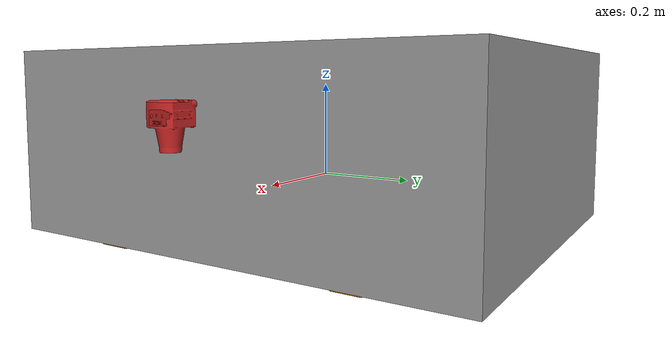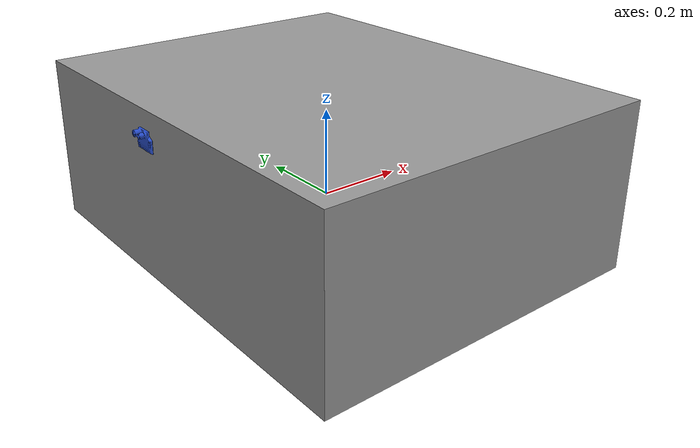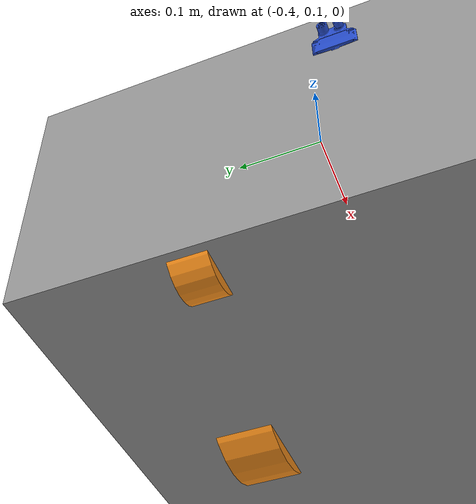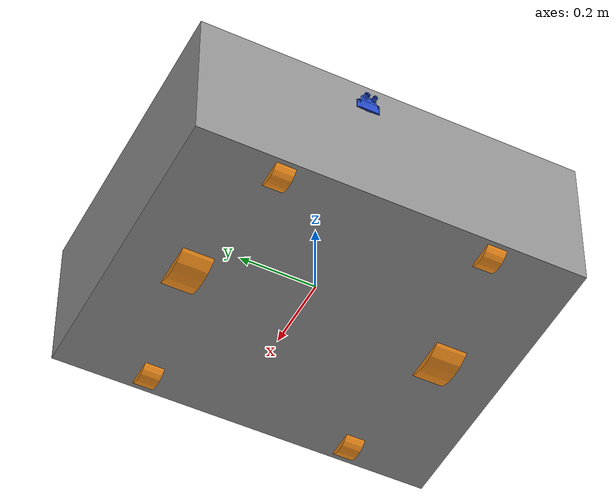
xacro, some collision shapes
<?xml version="1.0" ?>
<robot name="tway" xmlns:xacro="http://ros.org/wiki/xacro">
<!-- This included file for COLOR define-->
  <xacro:include filename="$(find tway_description)/urdf/common_properties.xacro"/>
<xacro:include filename="$(find tway_description)/urdf/tway.gazebo.xacro"/>

<!--This is for: Constant declare -->
  <xacro:property name="r200_cam_rgb_px" value="0.005"/>
  <xacro:property name="r200_cam_rgb_py" value="0.018"/>
  <xacro:property name="r200_cam_rgb_pz" value="0.013"/>
  <xacro:property name="r200_cam_depth_offset" value="0.01"/>

	<xacro:property name="length_wheel" value="0.05" />
	<xacro:property name="radius_wheel" value="0.05" />

	<xacro:arg name="carter_ori" default="-0.158" />
	<xacro:arg name="carter_radius" default="0.05" />

	<xacro:arg name="wheel_origin" default="-0.1" />

	<xacro:arg name="wheel_height" default="0" />
	<xacro:arg name="wheel_height" default="0" />

	<xacro:macro name="default_inertial" params="mass">
		<inertial>
			<mass value="${mass}" />
			<inertia ixx="1.0" ixy="0.0" ixz="0.0"
					 iyy="1.0" iyz="0.0"
					 izz="1.0" />
		</inertial>
	</xacro:macro>

<!--First, we have to Describe Tway Base (body) and its foot print -->

  <link name="base_footprint"/>
  <joint name="base_joint" type="fixed">
    <parent link="base_footprint"/>
    <child link="base_link" />
    <origin xyz="0 0 0.08" rpy="0 0 0"/>
  </joint>

  <link name="base_link">
    <visual>
      <origin xyz="-0.52 0.82 -0.40" rpy="1.57 0 0"/>      <!-- body position only -->
      <geometry>
        <mesh filename="package://tway_description/meshes/bases/tway_base.stl" scale="0.001 0.001 0.001"/>
      </geometry>
      <material name="grey"/>
    </visual>

    <collision>
      <origin xyz="0 0 0" rpy="0 0 0"/>    <!-- no effect -->
      <geometry>
        <box size="0.8 1.0 0.38"/>
      </geometry>
    </collision>

    <inertial>
      <origin xyz="0 0 0" rpy="0 0 0"/>
      <mass value="300e+00"/>
      <inertia ixx="19.61" ixy="-4.7576583e-05" ixz="1.1160499e-04"
               iyy="28.61" iyz="-3.5422299e-06"
               izz="41" />
    </inertial>
  </link>

<!-- //////////////////////Wheel part. Tway has 2 Wheels /////////////////////////-->
<!--Second, We describe Left and Right Wheel  -->

  <joint name="wheel_left_joint" type="continuous">
    <parent link="base_link"/>
    <child link="wheel_left_link"/>
    <origin xyz="0.0 0.3315 $(arg wheel_origin)" rpy="-1.57 0 0"/>
    <axis xyz="0 0 1"/>
  </joint>

  <link name="wheel_left_link">
    <visual>
      <origin xyz="0 0 0" rpy="0 0 0"/>
      <geometry>
        <cylinder length="0.08" radius="0.11"/>
      </geometry>
      <material name="orange"/>
    </visual>

    <collision>
      <origin xyz="0 0.0 0" rpy="0 0 0"/>
      <geometry>
        <cylinder length="0.08" radius="0.11"/>
      </geometry>
    </collision>

    <inertial>
      <origin xyz="0 0 0" />
      <mass value="21" />
      <inertia ixx="0.154" ixy="-4.2369783e-8" ixz="-5.9381719e-07"
               iyy="0.056" iyz="-1.4400107e-8"
               izz="0.132" />
      </inertial>
  </link>

  <joint name="wheel_right_joint" type="continuous">
    <parent link="base_link"/>
    <child link="wheel_right_link"/>
    <origin xyz="0.0 -0.3315 $(arg wheel_origin)" rpy="-1.57 0 0"/>
    <axis xyz="0 0 1"/>
  </joint>

  <link name="wheel_right_link">
    <visual>
      <origin xyz="0 0 0" rpy="0 0 0"/>
      <geometry>
        <cylinder length="0.08" radius="0.11"/>
      </geometry>
      <material name="orange"/>
    </visual>

    <collision>
      <origin xyz="0 0.0 0" rpy="0 0 0"/>
      <geometry>
        <cylinder length="0.08" radius="0.11"/>
      </geometry>
    </collision>

    <inertial>
      <origin xyz="0 0 0" />
      <mass value="21" />
      <inertia ixx="0.154" ixy="-4.2369783e-8" ixz="-5.9381719e-07"
               iyy="0.056" iyz="-1.4400107e-8"
               izz="0.132" />
      </inertial>
  </link>

<!-- //////////////////////CARTER part. Tway has 4 CARTERS /////////////////////////-->

<joint name="caster_back_right_joint" type="fixed">
    <parent link="base_link"/>
    <child link="caster_back_right_link"/>
    <origin xyz="0.35 -0.27 $(arg carter_ori)" rpy="1.57 0 0"/>
	<axis xyz="0 0 1"/>
  </joint>

  <link name="caster_back_right_link">
	 <visual>
      <origin xyz="0 0 0" rpy="0 0 0"/>
      <geometry>
        <cylinder length="0.05" radius="$(arg carter_radius)"/>
      </geometry>
      <material name="orange"/>
    </visual>

    <collision>
      <origin xyz="0 0.0 0" rpy="0 0 0"/>
      <geometry>
        <cylinder length="0.05" radius="$(arg carter_radius)"/>
      </geometry>
      <material name="red"/>
    </collision>

    <inertial>
      <origin xyz="0 0 0" />
      <mass value="1" />
      <inertia ixx="0.1" ixy="0.0" ixz="0.0"
               iyy="0.1" iyz="0.0"
               izz="0.1" />
    </inertial>
  </link>

  <joint name="caster_back_left_joint" type="fixed">
    <parent link="base_link"/>
    <child link="caster_back_left_link"/>
    <origin xyz="0.35 0.27 $(arg carter_ori) " rpy="1.57 0 0"/>
	  <axis xyz="0 0 1"/>
  </joint>

  <link name="caster_back_left_link">
	<visual>
      <origin xyz="0 0 0" rpy="0 0 0"/>
      <geometry>
        <cylinder length="0.05" radius="$(arg carter_radius)"/>
      </geometry>
      <material name="orange"/>
    </visual>

    <collision>
      <origin xyz="0 0.0 0" rpy="0 0 0"/>
      <geometry>
        <cylinder length="0.05" radius="$(arg carter_radius)"/>
      </geometry>
      <material name="blue"/>
    </collision>

    <inertial>
      <origin xyz="0 0 0" />
      <mass value="1" />
      <inertia ixx="0.1" ixy="0.0" ixz="0.0"
               iyy="0.1" iyz="0.0"
               izz="0.1" />
    </inertial>
  </link>

	<joint name="caster_front_right_joint" type="fixed">
    <parent link="base_link"/>
    <child link="caster_front_right_link"/>
    <origin xyz="-0.35 -0.27 $(arg carter_ori)" rpy="1.57 0 0"/>
		<axis xyz="0 0 1"/>
  </joint>

  <link name="caster_front_right_link">
	 <visual>
      <origin xyz="0 0 0" rpy="0 0 0"/>
      <geometry>
        <cylinder length="0.05" radius="$(arg carter_radius)"/>
      </geometry>
      <material name="orange"/>
    </visual>

    <collision>
      <origin xyz="0 0.0 0" rpy="0 0 0"/>
      <geometry>
        <cylinder length="0.05" radius="$(arg carter_radius)"/>
      </geometry>
      <material name="red"/>
    </collision>

    <inertial>
      <origin xyz="0 0 0" />
      <mass value="1" />
      <inertia ixx="0.1" ixy="0.0" ixz="0.0"
               iyy="0.1" iyz="0.0"
               izz="0.1" />
    </inertial>
  </link>

  <joint name="caster_front_left_joint" type="fixed">
    <parent link="base_link"/>
    <child link="caster_front_left_link"/>
    <origin xyz="-0.35 0.27 $(arg carter_ori)" rpy="1.57 0 0"/>
	  <axis xyz="0 0 1"/>
  </joint>

  <link name="caster_front_left_link">

	<visual>
      <origin xyz="0 0 0" rpy="0 0 0"/>
      <geometry>
        <cylinder length="0.05" radius="$(arg carter_radius)"/>
      </geometry>
      <material name="orange"/>
    </visual>

    <collision>
      <origin xyz="0 0.0 0" rpy="0 0 0"/>
      <geometry>
        <cylinder length="0.05" radius="$(arg carter_radius)"/>
      </geometry>
      <material name="blue"/>
    </collision>

    <inertial>
      <origin xyz="0 0 0" />
      <mass value="1" />
      <inertia ixx="0.1" ixy="0.0" ixz="0.0"
               iyy="0.1" iyz="0.0"
               izz="0.1" />
    </inertial>
  </link>

  <joint name="imu_joint" type="fixed">
    <parent link="base_link"/>
    <child link="imu_link"/>
    <origin xyz="-0.032 0 0.068" rpy="0 0 0"/>
  </joint>

  <link name="imu_link"/>

  <joint name="scan_joint" type="fixed">
    <parent link="base_link"/>
    <child link="laser"/>
    <origin xyz="0.42 -0.035 0.1" rpy="0 0 0"/>
  </joint>

  <link name="laser">
    <visual>
      <origin xyz="0 0 0" rpy="-1.57 0 0"/>
      <geometry>
        <mesh filename="package://tway_description/meshes/sensors/sick551.stl" scale="0.001 0.001 0.001"/>
      </geometry>
      <material name="red"/>
    </visual>

    <collision>
      <origin xyz="0 0 0" rpy="0 0 0"/>
      <geometry>
        <cylinder length="0.0315" radius="0.055"/>
      </geometry>
    </collision>

    <inertial>
      <mass value="0.114" />
      <origin xyz="0 0 0" />
      <inertia ixx="0.001" ixy="0.0" ixz="0.0"
               iyy="0.001" iyz="0.0"
               izz="0.001" />
    </inertial>
  </link>

  <joint name="scan_joint_back" type="fixed">
    <parent link="base_link"/>
    <child link="base_scan_back"/>
    <origin xyz="-0.42 0.035 0.15" rpy="0 0 3.1459"/>
  </joint>

  <link name="base_scan_back">
    <visual>
      <origin xyz="0 0.0 0.0" rpy="-1.57 0 3.14"/>
      <geometry>
        <mesh filename="package://tway_description/meshes/sensors/sick551.stl" scale="0.001 0.001 0.001"/>
      </geometry>
      <material name="blue"/>
    </visual>

    <collision>
      <origin xyz="0 0 0" rpy="0 0 0"/>
      <geometry>
        <cylinder length="0.0315" radius="0.055"/>
      </geometry>
    </collision>

    <inertial>
      <mass value="0.114" />
      <origin xyz="0 0 0" />
      <inertia ixx="0.001" ixy="0.0" ixz="0.0"
               iyy="0.001" iyz="0.0"
               izz="0.001" />
    </inertial>
  </link>

</robot>
